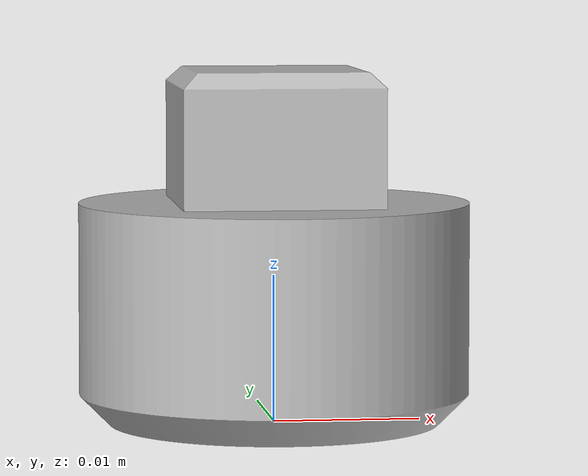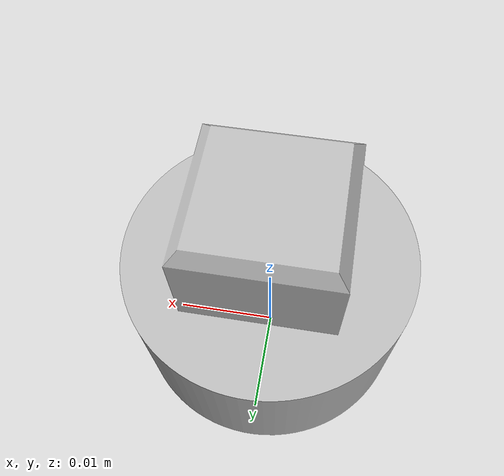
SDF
<?xml version="1.0" ?>
<sdf version="1.4">
    <model name="challenge_pivot">
    <static>false</static>
    <link name="link">
        <pose>0 0 0 0 0 0</pose>
        <collision name="collision">
            <geometry>
                <mesh>
                    <uri>model://challenge_pivot/mesh/challenge_pivot.stl</uri>
                    <scale>0.001 0.001 0.001</scale>
                </mesh>
            </geometry>
        </collision>
        <visual name="visual">
            <geometry>
                <mesh>
                    <uri>model://challenge_pivot/mesh/challenge_pivot.stl</uri>
                    <scale>0.001 0.001 0.001</scale>
                </mesh>
            </geometry>
        </visual>
        </link>
    </model>
</sdf>
